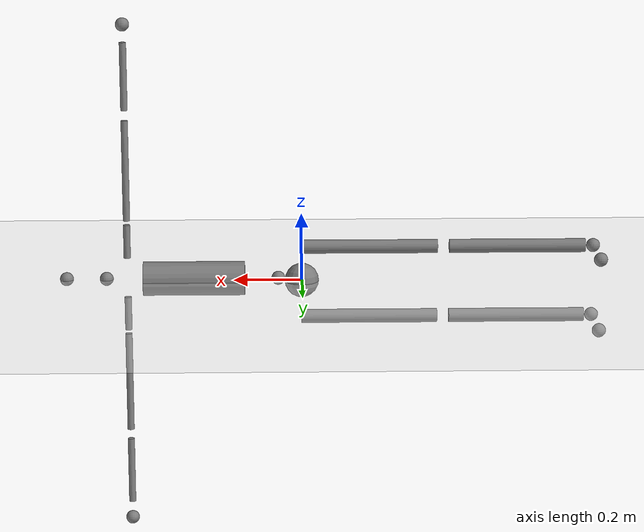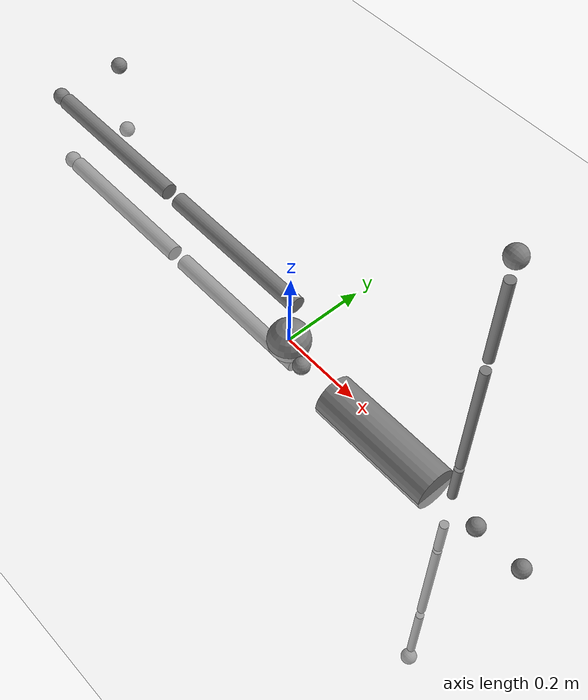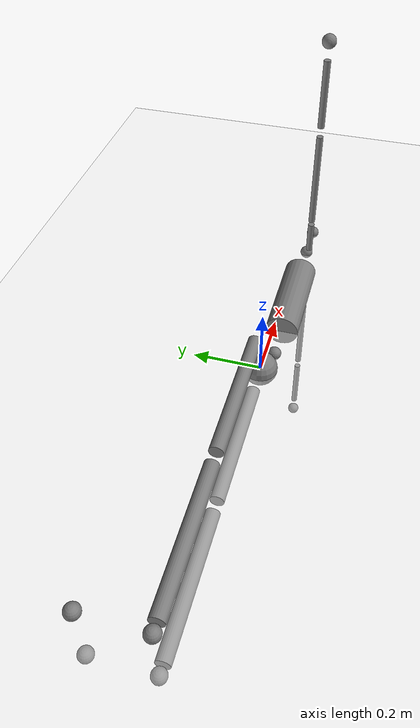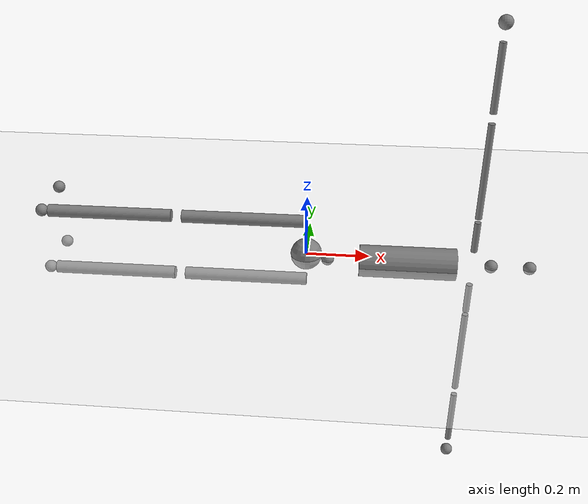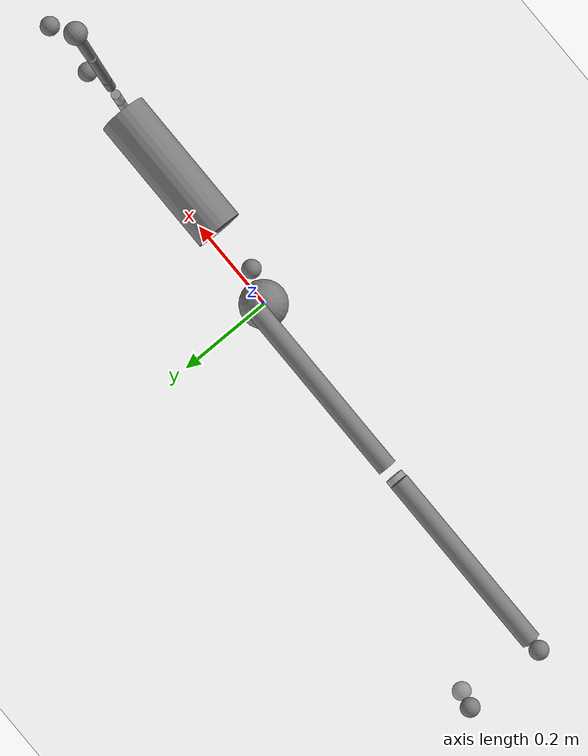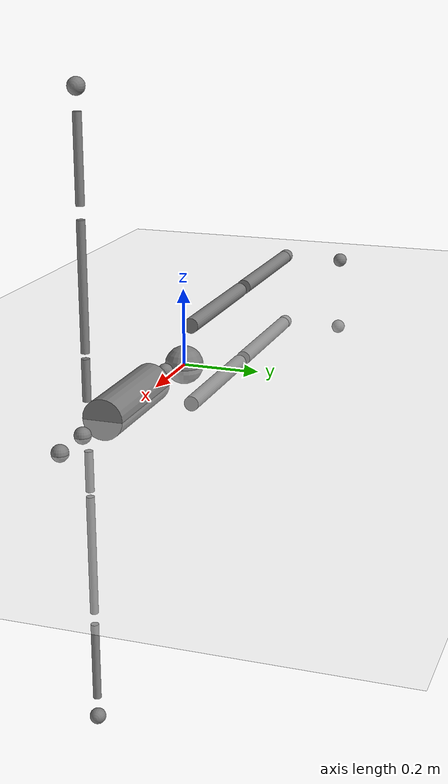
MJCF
<?xml version='1.0' encoding='utf-8'?>
<mujoco model="bvh_human_3dof_tpose">
  <compiler angle="radian" meshdir="meshes/" />
  <worldbody>
    <body name="Hips">
      <inertial pos="0 0 0" mass="1" diaginertia="0.01 0.01 0.01" />
      <joint name="floating_base_joint" type="free" />
      <geom size="0.05" contype="0" conaffinity="0" group="1" density="0" />
      <body name="LeftUpLeg_rz" pos="0.00103457 0.0185782 0.105485" quat="-2.32051e-08 0 0 -1">
        <inertial pos="0 0 0" mass="1" diaginertia="0.01 0.01 0.01" />
        <joint name="Hips_to_LeftUpLeg_rz" pos="0 0 0" axis="0 0 1" range="-15 15" actuatorfrcrange="-100 100" />
        <body name="LeftUpLeg_ry">
          <inertial pos="0 0 0" mass="1" diaginertia="0.01 0.01 0.01" />
          <joint name="LeftUpLeg_rz_to_LeftUpLeg_ry" pos="0 0 0" axis="0 1 0" range="-15 15" actuatorfrcrange="-100 100" />
          <body name="LeftUpLeg" quat="-2.32051e-08 1 0 0">
            <inertial pos="0 0 0" mass="1" diaginertia="0.01 0.01 0.01" />
            <joint name="LeftUpLeg_ry_to_LeftUpLeg" pos="0 0 0" axis="1 0 0" range="-15 15" actuatorfrcrange="-100 100" />
            <geom size="0.02 0.2" pos="0.2 0 0" quat="0.707388 0 0.706825 0" type="cylinder" contype="0" conaffinity="0" group="1" density="0" />
            <body name="LeftLeg_rz" pos="0.435 -1.9e-07 2e-08">
              <inertial pos="0 0 0" mass="1" diaginertia="0.01 0.01 0.01" />
              <joint name="LeftUpLeg_to_LeftLeg_rz" pos="0 0 0" axis="0 0 1" range="-15 15" actuatorfrcrange="-100 100" />
              <body name="LeftLeg_ry">
                <inertial pos="0 0 0" mass="1" diaginertia="0.01 0.01 0.01" />
                <joint name="LeftLeg_rz_to_LeftLeg_ry" pos="0 0 0" axis="0 1 0" range="-15 15" actuatorfrcrange="-100 100" />
                <body name="LeftLeg">
                  <inertial pos="0 0 0" mass="1" diaginertia="0.01 0.01 0.01" />
                  <joint name="LeftLeg_ry_to_LeftLeg" pos="0 0 0" axis="1 0 0" range="-15 15" actuatorfrcrange="-100 100" />
                  <geom size="0.02 0.2" pos="0.2 0 0" quat="0.707388 0 0.706825 0" type="cylinder" contype="0" conaffinity="0" group="1" density="0" />
                  <body name="LeftFoot_rz" pos="0.423722 -4e-08 3e-08" quat="0.707107 0 0 0.707107">
                    <inertial pos="0 0 0" mass="1" diaginertia="0.01 0.01 0.01" />
                    <joint name="LeftLeg_to_LeftFoot_rz" pos="0 0 0" axis="0 0 1" range="-15 15" actuatorfrcrange="-100 100" />
                    <body name="LeftFoot_ry">
                      <inertial pos="0 0 0" mass="1" diaginertia="0.01 0.01 0.01" />
                      <joint name="LeftFoot_rz_to_LeftFoot_ry" pos="0 0 0" axis="0 1 0" range="-15 15" actuatorfrcrange="-100 100" />
                      <body name="LeftFoot">
                        <inertial pos="0 0 0" mass="1" diaginertia="0.01 0.01 0.01" />
                        <joint name="LeftFoot_ry_to_LeftFoot" pos="0 0 0" axis="1 0 0" range="-15 15" actuatorfrcrange="-100 100" />
                        <geom size="0.02" contype="0" conaffinity="0" group="1" density="0" />
                        <body name="LeftToe_rz" pos="0.173 2e-08 6e-08">
                          <inertial pos="0 0 0" mass="1" diaginertia="0.01 0.01 0.01" />
                          <joint name="LeftFoot_to_LeftToe_rz" pos="0 0 0" axis="0 0 1" range="-15 15" actuatorfrcrange="-100 100" />
                          <body name="LeftToe_ry">
                            <inertial pos="0 0 0" mass="1" diaginertia="0.01 0.01 0.01" />
                            <joint name="LeftToe_rz_to_LeftToe_ry" pos="0 0 0" axis="0 1 0" range="-15 15" actuatorfrcrange="-100 100" />
                            <body name="LeftToe">
                              <inertial pos="0 0 0" mass="2" diaginertia="0.02 0.02 0.02" />
                              <joint name="LeftToe_ry_to_LeftToe" pos="0 0 0" axis="1 0 0" range="-15 15" actuatorfrcrange="-100 100" />
                              <geom size="0.02" contype="0" conaffinity="0" group="1" density="0" />
                              <geom size="0.02" contype="0" conaffinity="0" group="1" density="0" />
                            </body>
                          </body>
                        </body>
                      </body>
                    </body>
                  </body>
                </body>
              </body>
            </body>
          </body>
        </body>
      </body>
      <body name="RightUpLeg_rz" pos="0.00103459 0.0185782 -0.105485" quat="-2.32051e-08 0 0 -1">
        <inertial pos="0 0 0" mass="1" diaginertia="0.01 0.01 0.01" />
        <joint name="Hips_to_RightUpLeg_rz" pos="0 0 0" axis="0 0 1" range="-15 15" actuatorfrcrange="-100 100" />
        <body name="RightUpLeg_ry">
          <inertial pos="0 0 0" mass="1" diaginertia="0.01 0.01 0.01" />
          <joint name="RightUpLeg_rz_to_RightUpLeg_ry" pos="0 0 0" axis="0 1 0" range="-15 15" actuatorfrcrange="-100 100" />
          <body name="RightUpLeg" quat="-2.32051e-08 -1 0 0">
            <inertial pos="0 0 0" mass="1" diaginertia="0.01 0.01 0.01" />
            <joint name="RightUpLeg_ry_to_RightUpLeg" pos="0 0 0" axis="1 0 0" range="-15 15" actuatorfrcrange="-100 100" />
            <geom size="0.02 0.2" pos="0.2 0 0" quat="0.707388 0 0.706825 0" type="cylinder" contype="0" conaffinity="0" group="1" density="0" />
            <body name="RightLeg_rz" pos="0.435 -1.5e-07 1e-07">
              <inertial pos="0 0 0" mass="1" diaginertia="0.01 0.01 0.01" />
              <joint name="RightUpLeg_to_RightLeg_rz" pos="0 0 0" axis="0 0 1" range="-15 15" actuatorfrcrange="-100 100" />
              <body name="RightLeg_ry">
                <inertial pos="0 0 0" mass="1" diaginertia="0.01 0.01 0.01" />
                <joint name="RightLeg_rz_to_RightLeg_ry" pos="0 0 0" axis="0 1 0" range="-15 15" actuatorfrcrange="-100 100" />
                <body name="RightLeg">
                  <inertial pos="0 0 0" mass="1" diaginertia="0.01 0.01 0.01" />
                  <joint name="RightLeg_ry_to_RightLeg" pos="0 0 0" axis="1 0 0" range="-15 15" actuatorfrcrange="-100 100" />
                  <geom size="0.02 0.2" pos="0.2 0 0" quat="0.707388 0 0.706825 0" type="cylinder" contype="0" conaffinity="0" group="1" density="0" />
                  <body name="RightFoot_rz" pos="0.423723 -8e-08 1e-07" quat="0.707107 0 0 0.707107">
                    <inertial pos="0 0 0" mass="1" diaginertia="0.01 0.01 0.01" />
                    <joint name="RightLeg_to_RightFoot_rz" pos="0 0 0" axis="0 0 1" range="-15 15" actuatorfrcrange="-100 100" />
                    <body name="RightFoot_ry">
                      <inertial pos="0 0 0" mass="1" diaginertia="0.01 0.01 0.01" />
                      <joint name="RightFoot_rz_to_RightFoot_ry" pos="0 0 0" axis="0 1 0" range="-15 15" actuatorfrcrange="-100 100" />
                      <body name="RightFoot">
                        <inertial pos="0 0 0" mass="1" diaginertia="0.01 0.01 0.01" />
                        <joint name="RightFoot_ry_to_RightFoot" pos="0 0 0" axis="1 0 0" range="-15 15" actuatorfrcrange="-100 100" />
                        <geom size="0.02" contype="0" conaffinity="0" group="1" density="0" />
                        <body name="RightToe_rz" pos="0.173 -5e-08 0">
                          <inertial pos="0 0 0" mass="1" diaginertia="0.01 0.01 0.01" />
                          <joint name="RightFoot_to_RightToe_rz" pos="0 0 0" axis="0 0 1" range="-15 15" actuatorfrcrange="-100 100" />
                          <body name="RightToe_ry">
                            <inertial pos="0 0 0" mass="1" diaginertia="0.01 0.01 0.01" />
                            <joint name="RightToe_rz_to_RightToe_ry" pos="0 0 0" axis="0 1 0" range="-15 15" actuatorfrcrange="-100 100" />
                            <body name="RightToe">
                              <inertial pos="0 0 0" mass="2" diaginertia="0.02 0.02 0.02" />
                              <joint name="RightToe_ry_to_RightToe" pos="0 0 0" axis="1 0 0" range="-15 15" actuatorfrcrange="-100 100" />
                              <geom size="0.02" contype="0" conaffinity="0" group="1" density="0" />
                              <geom size="0.02" contype="0" conaffinity="0" group="1" density="0" />
                            </body>
                          </body>
                        </body>
                      </body>
                    </body>
                  </body>
                </body>
              </body>
            </body>
          </body>
        </body>
      </body>
      <body name="Spine_rz" pos="0.0690197 -0.0260374 1e-08">
        <inertial pos="0 0 0" mass="1" diaginertia="0.01 0.01 0.01" />
        <joint name="Hips_to_Spine_rz" pos="0 0 0" axis="0 0 1" range="-15 15" actuatorfrcrange="-100 100" />
        <body name="Spine_ry">
          <inertial pos="0 0 0" mass="1" diaginertia="0.01 0.01 0.01" />
          <joint name="Spine_rz_to_Spine_ry" pos="0 0 0" axis="0 1 0" range="-15 15" actuatorfrcrange="-100 100" />
          <body name="Spine">
            <inertial pos="0 0 0" mass="1" diaginertia="0.01 0.01 0.01" />
            <joint name="Spine_ry_to_Spine" pos="0 0 0" axis="1 0 0" range="-15 15" actuatorfrcrange="-100 100" />
            <geom size="0.02" contype="0" conaffinity="0" group="1" density="0" />
            <body name="Spine1_rz" pos="0.125881 1.6e-07 -5e-08">
              <inertial pos="0 0 0" mass="1" diaginertia="0.01 0.01 0.01" />
              <joint name="Spine_to_Spine1_rz" pos="0 0 0" axis="0 0 1" range="-15 15" actuatorfrcrange="-100 100" />
              <body name="Spine1_ry">
                <inertial pos="0 0 0" mass="1" diaginertia="0.01 0.01 0.01" />
                <joint name="Spine1_rz_to_Spine1_ry" pos="0 0 0" axis="0 1 0" range="-15 15" actuatorfrcrange="-100 100" />
                <body name="Spine1">
                  <inertial pos="0 0 0" mass="1" diaginertia="0.01 0.01 0.01" />
                  <joint name="Spine1_ry_to_Spine1" pos="0 0 0" axis="1 0 0" range="-15 15" actuatorfrcrange="-100 100" />
                  <geom size="0.02" contype="0" conaffinity="0" group="1" density="0" />
                  <body name="Spine2_rz" pos="0.123432 -1.1e-07 -5e-08">
                    <inertial pos="0 0 0" mass="1" diaginertia="0.01 0.01 0.01" />
                    <joint name="Spine1_to_Spine2_rz" pos="0 0 0" axis="0 0 1" range="-15 15" actuatorfrcrange="-100 100" />
                    <body name="Spine2_ry">
                      <inertial pos="0 0 0" mass="1" diaginertia="0.01 0.01 0.01" />
                      <joint name="Spine2_rz_to_Spine2_ry" pos="0 0 0" axis="0 1 0" range="-15 15" actuatorfrcrange="-100 100" />
                      <body name="Spine2">
                        <inertial pos="0 0 0" mass="1" diaginertia="0.01 0.01 0.01" />
                        <joint name="Spine2_ry_to_Spine2" pos="0 0 0" axis="1 0 0" range="-15 15" actuatorfrcrange="-100 100" />
                        <geom size="0.05 0.15" quat="0.707388 0 0.706825 0" type="cylinder" contype="0" conaffinity="0" group="1" density="0" />
                        <body name="Neck_rz" pos="0.258329 8e-08 6e-08">
                          <inertial pos="0 0 0" mass="1" diaginertia="0.01 0.01 0.01" />
                          <joint name="Spine2_to_Neck_rz" pos="0 0 0" axis="0 0 1" range="-15 15" actuatorfrcrange="-100 100" />
                          <body name="Neck_ry">
                            <inertial pos="0 0 0" mass="1" diaginertia="0.01 0.01 0.01" />
                            <joint name="Neck_rz_to_Neck_ry" pos="0 0 0" axis="0 1 0" range="-15 15" actuatorfrcrange="-100 100" />
                            <body name="Neck">
                              <inertial pos="0 0 0" mass="1" diaginertia="0.01 0.01 0.01" />
                              <joint name="Neck_ry_to_Neck" pos="0 0 0" axis="1 0 0" range="-15 15" actuatorfrcrange="-100 100" />
                              <geom size="0.02" contype="0" conaffinity="0" group="1" density="0" />
                              <body name="Head_rz" pos="0.117666 -4e-08 -2e-08">
                                <inertial pos="0 0 0" mass="1" diaginertia="0.01 0.01 0.01" />
                                <joint name="Neck_to_Head_rz" pos="0 0 0" axis="0 0 1" range="-15 15" actuatorfrcrange="-100 100" />
                                <body name="Head_ry">
                                  <inertial pos="0 0 0" mass="1" diaginertia="0.01 0.01 0.01" />
                                  <joint name="Head_rz_to_Head_ry" pos="0 0 0" axis="0 1 0" range="-15 15" actuatorfrcrange="-100 100" />
                                  <body name="Head">
                                    <inertial pos="0 0 0" mass="2" diaginertia="0.02 0.02 0.02" />
                                    <joint name="Head_ry_to_Head" pos="0 0 0" axis="1 0 0" range="-15 15" actuatorfrcrange="-100 100" />
                                    <geom size="0.02" contype="0" conaffinity="0" group="1" density="0" />
                                    <geom size="0.02" contype="0" conaffinity="0" group="1" density="0" />
                                  </body>
                                </body>
                              </body>
                            </body>
                          </body>
                        </body>
                        <body name="LeftShoulder_rz" pos="0.197459 -0.0148037 0.0600012" quat="0.707107 0 0 -0.707107">
                          <inertial pos="0 0 0" mass="1" diaginertia="0.01 0.01 0.01" />
                          <joint name="Spine2_to_LeftShoulder_rz" pos="0 0 0" axis="0 0 1" range="-15 15" actuatorfrcrange="-100 100" />
                          <body name="LeftShoulder_ry" quat="0.707107 0 -0.707107 0">
                            <inertial pos="0 0 0" mass="1" diaginertia="0.01 0.01 0.01" />
                            <joint name="LeftShoulder_rz_to_LeftShoulder_ry" pos="0 0 0" axis="0 1 0" range="-15 15" actuatorfrcrange="-100 100" />
                            <body name="LeftShoulder" quat="0.707107 -0.707107 0 0">
                              <inertial pos="0 0 0" mass="1" diaginertia="0.01 0.01 0.01" />
                              <joint name="LeftShoulder_ry_to_LeftShoulder" pos="0 0 0" axis="1 0 0" range="-15 15" actuatorfrcrange="-100 100" />
                              <geom size="0.01 0.05" pos="0.05 0 0" quat="0.707388 0 0.706825 0" type="cylinder" contype="0" conaffinity="0" group="1" density="0" />
                              <body name="LeftArm_rz" pos="0.112841 -1.2e-07 -8e-08">
                                <inertial pos="0 0 0" mass="1" diaginertia="0.01 0.01 0.01" />
                                <joint name="LeftShoulder_to_LeftArm_rz" pos="0 0 0" axis="0 0 1" range="-15 15" actuatorfrcrange="-100 100" />
                                <body name="LeftArm_ry">
                                  <inertial pos="0 0 0" mass="1" diaginertia="0.01 0.01 0.01" />
                                  <joint name="LeftArm_rz_to_LeftArm_ry" pos="0 0 0" axis="0 1 0" range="-15 15" actuatorfrcrange="-100 100" />
                                  <body name="LeftArm">
                                    <inertial pos="0 0 0" mass="1" diaginertia="0.01 0.01 0.01" />
                                    <joint name="LeftArm_ry_to_LeftArm" pos="0 0 0" axis="1 0 0" range="-15 15" actuatorfrcrange="-100 100" />
                                    <geom size="0.01 0.15" pos="0.15 0 0" quat="0.707388 0 0.706825 0" type="cylinder" contype="0" conaffinity="0" group="1" density="0" />
                                    <body name="LeftForeArm_rz" pos="0.33 2e-08 2.2e-07">
                                      <inertial pos="0 0 0" mass="1" diaginertia="0.01 0.01 0.01" />
                                      <joint name="LeftArm_to_LeftForeArm_rz" pos="0 0 0" axis="0 0 1" range="-15 15" actuatorfrcrange="-100 100" />
                                      <body name="LeftForeArm_ry">
                                        <inertial pos="0 0 0" mass="1" diaginertia="0.01 0.01 0.01" />
                                        <joint name="LeftForeArm_rz_to_LeftForeArm_ry" pos="0 0 0" axis="0 1 0" range="-15 15" actuatorfrcrange="-100 100" />
                                        <body name="LeftForeArm">
                                          <inertial pos="0 0 0" mass="1" diaginertia="0.01 0.01 0.01" />
                                          <joint name="LeftForeArm_ry_to_LeftForeArm" pos="0 0 0" axis="1 0 0" range="-15 15" actuatorfrcrange="-100 100" />
                                          <geom size="0.01 0.1" pos="0.1 0 0" quat="0.707388 0 0.706825 0" type="cylinder" contype="0" conaffinity="0" group="1" density="0" />
                                          <body name="LeftHand_rz" pos="0.252 6e-08 1.5e-07">
                                            <inertial pos="0 0 0" mass="1" diaginertia="0.01 0.01 0.01" />
                                            <joint name="LeftForeArm_to_LeftHand_rz" pos="0 0 0" axis="0 0 1" range="-15 15" actuatorfrcrange="-100 100" />
                                            <body name="LeftHand_ry">
                                              <inertial pos="0 0 0" mass="1" diaginertia="0.01 0.01 0.01" />
                                              <joint name="LeftHand_rz_to_LeftHand_ry" pos="0 0 0" axis="0 1 0" range="-15 15" actuatorfrcrange="-100 100" />
                                              <body name="LeftHand">
                                                <inertial pos="0 0 0" mass="2" diaginertia="0.02 0.02 0.02" />
                                                <joint name="LeftHand_ry_to_LeftHand" pos="0 0 0" axis="1 0 0" range="-15 15" actuatorfrcrange="-100 100" />
                                                <geom size="0.02" contype="0" conaffinity="0" group="1" density="0" />
                                                <geom size="0.02" contype="0" conaffinity="0" group="1" density="0" />
                                              </body>
                                            </body>
                                          </body>
                                        </body>
                                      </body>
                                    </body>
                                  </body>
                                </body>
                              </body>
                            </body>
                          </body>
                        </body>
                        <body name="RightShoulder_rz" pos="0.197461 -0.0148038 -0.0600007" quat="0.707107 0 0 0.707107">
                          <inertial pos="0 0 0" mass="1" diaginertia="0.01 0.01 0.01" />
                          <joint name="Spine2_to_RightShoulder_rz" pos="0 0 0" axis="0 0 1" range="-15 15" actuatorfrcrange="-100 100" />
                          <body name="RightShoulder_ry" quat="0.707107 0 0.707107 0">
                            <inertial pos="0 0 0" mass="1" diaginertia="0.01 0.01 0.01" />
                            <joint name="RightShoulder_rz_to_RightShoulder_ry" pos="0 0 0" axis="0 1 0" range="-15 15" actuatorfrcrange="-100 100" />
                            <body name="RightShoulder" quat="0.707107 -0.707107 0 0">
                              <inertial pos="0 0 0" mass="1" diaginertia="0.01 0.01 0.01" />
                              <joint name="RightShoulder_ry_to_RightShoulder" pos="0 0 0" axis="1 0 0" range="-15 15" actuatorfrcrange="-100 100" />
                              <geom size="0.01 0.05" pos="0.05 0 0" quat="0.707388 0 0.706825 0" type="cylinder" contype="0" conaffinity="0" group="1" density="0" />
                              <body name="RightArm_rz" pos="0.112841 -3.5e-07 -8e-08">
                                <inertial pos="0 0 0" mass="1" diaginertia="0.01 0.01 0.01" />
                                <joint name="RightShoulder_to_RightArm_rz" pos="0 0 0" axis="0 0 1" range="-15 15" actuatorfrcrange="-100 100" />
                                <body name="RightArm_ry">
                                  <inertial pos="0 0 0" mass="1" diaginertia="0.01 0.01 0.01" />
                                  <joint name="RightArm_rz_to_RightArm_ry" pos="0 0 0" axis="0 1 0" range="-15 15" actuatorfrcrange="-100 100" />
                                  <body name="RightArm">
                                    <inertial pos="0 0 0" mass="1" diaginertia="0.01 0.01 0.01" />
                                    <joint name="RightArm_ry_to_RightArm" pos="0 0 0" axis="1 0 0" range="-15 15" actuatorfrcrange="-100 100" />
                                    <geom size="0.01 0.15" pos="0.15 0 0" quat="0.707388 0 0.706825 0" type="cylinder" contype="0" conaffinity="0" group="1" density="0" />
                                    <body name="RightForeArm_rz" pos="0.330001 1.9e-07 6e-08">
                                      <inertial pos="0 0 0" mass="1" diaginertia="0.01 0.01 0.01" />
                                      <joint name="RightArm_to_RightForeArm_rz" pos="0 0 0" axis="0 0 1" range="-15 15" actuatorfrcrange="-100 100" />
                                      <body name="RightForeArm_ry">
                                        <inertial pos="0 0 0" mass="1" diaginertia="0.01 0.01 0.01" />
                                        <joint name="RightForeArm_rz_to_RightForeArm_ry" pos="0 0 0" axis="0 1 0" range="-15 15" actuatorfrcrange="-100 100" />
                                        <body name="RightForeArm">
                                          <inertial pos="0 0 0" mass="1" diaginertia="0.01 0.01 0.01" />
                                          <joint name="RightForeArm_ry_to_RightForeArm" pos="0 0 0" axis="1 0 0" range="-15 15" actuatorfrcrange="-100 100" />
                                          <geom size="0.01 0.1" pos="0.1 0 0" quat="0.707388 0 0.706825 0" type="cylinder" contype="0" conaffinity="0" group="1" density="0" />
                                          <body name="RightHand_rz" pos="0.251998 1.39e-06 4.31e-06">
                                            <inertial pos="0 0 0" mass="1" diaginertia="0.01 0.01 0.01" />
                                            <joint name="RightForeArm_to_RightHand_rz" pos="0 0 0" axis="0 0 1" range="-15 15" actuatorfrcrange="-100 100" />
                                            <body name="RightHand_ry">
                                              <inertial pos="0 0 0" mass="1" diaginertia="0.01 0.01 0.01" />
                                              <joint name="RightHand_rz_to_RightHand_ry" pos="0 0 0" axis="0 1 0" range="-15 15" actuatorfrcrange="-100 100" />
                                              <body name="RightHand">
                                                <inertial pos="0 0 0" mass="2" diaginertia="0.02 0.02 0.02" />
                                                <joint name="RightHand_ry_to_RightHand" pos="0 0 0" axis="1 0 0" range="-15 15" actuatorfrcrange="-100 100" />
                                                <geom size="0.02" contype="0" conaffinity="0" group="1" density="0" />
                                                <geom size="0.02" contype="0" conaffinity="0" group="1" density="0" />
                                              </body>
                                            </body>
                                          </body>
                                        </body>
                                      </body>
                                    </body>
                                  </body>
                                </body>
                              </body>
                            </body>
                          </body>
                        </body>
                      </body>
                    </body>
                  </body>
                </body>
              </body>
            </body>
          </body>
        </body>
      </body>
    </body>
  </worldbody>
  <actuator>
    <motor name="Hips_to_LeftUpLeg_rz" joint="Hips_to_LeftUpLeg_rz" gear="1" ctrlrange="-1 1" />
    <motor name="LeftUpLeg_rz_to_LeftUpLeg_ry" joint="LeftUpLeg_rz_to_LeftUpLeg_ry" gear="1" ctrlrange="-1 1" />
    <motor name="LeftUpLeg_ry_to_LeftUpLeg" joint="LeftUpLeg_ry_to_LeftUpLeg" gear="1" ctrlrange="-1 1" />
    <motor name="LeftUpLeg_to_LeftLeg_rz" joint="LeftUpLeg_to_LeftLeg_rz" gear="1" ctrlrange="-1 1" />
    <motor name="LeftLeg_rz_to_LeftLeg_ry" joint="LeftLeg_rz_to_LeftLeg_ry" gear="1" ctrlrange="-1 1" />
    <motor name="LeftLeg_ry_to_LeftLeg" joint="LeftLeg_ry_to_LeftLeg" gear="1" ctrlrange="-1 1" />
    <motor name="LeftLeg_to_LeftFoot_rz" joint="LeftLeg_to_LeftFoot_rz" gear="1" ctrlrange="-1 1" />
    <motor name="LeftFoot_rz_to_LeftFoot_ry" joint="LeftFoot_rz_to_LeftFoot_ry" gear="1" ctrlrange="-1 1" />
    <motor name="LeftFoot_ry_to_LeftFoot" joint="LeftFoot_ry_to_LeftFoot" gear="1" ctrlrange="-1 1" />
    <motor name="LeftFoot_to_LeftToe_rz" joint="LeftFoot_to_LeftToe_rz" gear="1" ctrlrange="-1 1" />
    <motor name="LeftToe_rz_to_LeftToe_ry" joint="LeftToe_rz_to_LeftToe_ry" gear="1" ctrlrange="-1 1" />
    <motor name="LeftToe_ry_to_LeftToe" joint="LeftToe_ry_to_LeftToe" gear="1" ctrlrange="-1 1" />
    <motor name="Hips_to_RightUpLeg_rz" joint="Hips_to_RightUpLeg_rz" gear="1" ctrlrange="-1 1" />
    <motor name="RightUpLeg_rz_to_RightUpLeg_ry" joint="RightUpLeg_rz_to_RightUpLeg_ry" gear="1" ctrlrange="-1 1" />
    <motor name="RightUpLeg_ry_to_RightUpLeg" joint="RightUpLeg_ry_to_RightUpLeg" gear="1" ctrlrange="-1 1" />
    <motor name="RightUpLeg_to_RightLeg_rz" joint="RightUpLeg_to_RightLeg_rz" gear="1" ctrlrange="-1 1" />
    <motor name="RightLeg_rz_to_RightLeg_ry" joint="RightLeg_rz_to_RightLeg_ry" gear="1" ctrlrange="-1 1" />
    <motor name="RightLeg_ry_to_RightLeg" joint="RightLeg_ry_to_RightLeg" gear="1" ctrlrange="-1 1" />
    <motor name="RightLeg_to_RightFoot_rz" joint="RightLeg_to_RightFoot_rz" gear="1" ctrlrange="-1 1" />
    <motor name="RightFoot_rz_to_RightFoot_ry" joint="RightFoot_rz_to_RightFoot_ry" gear="1" ctrlrange="-1 1" />
    <motor name="RightFoot_ry_to_RightFoot" joint="RightFoot_ry_to_RightFoot" gear="1" ctrlrange="-1 1" />
    <motor name="RightFoot_to_RightToe_rz" joint="RightFoot_to_RightToe_rz" gear="1" ctrlrange="-1 1" />
    <motor name="RightToe_rz_to_RightToe_ry" joint="RightToe_rz_to_RightToe_ry" gear="1" ctrlrange="-1 1" />
    <motor name="RightToe_ry_to_RightToe" joint="RightToe_ry_to_RightToe" gear="1" ctrlrange="-1 1" />
    <motor name="Hips_to_Spine_rz" joint="Hips_to_Spine_rz" gear="1" ctrlrange="-1 1" />
    <motor name="Spine_rz_to_Spine_ry" joint="Spine_rz_to_Spine_ry" gear="1" ctrlrange="-1 1" />
    <motor name="Spine_ry_to_Spine" joint="Spine_ry_to_Spine" gear="1" ctrlrange="-1 1" />
    <motor name="Spine_to_Spine1_rz" joint="Spine_to_Spine1_rz" gear="1" ctrlrange="-1 1" />
    <motor name="Spine1_rz_to_Spine1_ry" joint="Spine1_rz_to_Spine1_ry" gear="1" ctrlrange="-1 1" />
    <motor name="Spine1_ry_to_Spine1" joint="Spine1_ry_to_Spine1" gear="1" ctrlrange="-1 1" />
    <motor name="Spine1_to_Spine2_rz" joint="Spine1_to_Spine2_rz" gear="1" ctrlrange="-1 1" />
    <motor name="Spine2_rz_to_Spine2_ry" joint="Spine2_rz_to_Spine2_ry" gear="1" ctrlrange="-1 1" />
    <motor name="Spine2_ry_to_Spine2" joint="Spine2_ry_to_Spine2" gear="1" ctrlrange="-1 1" />
    <motor name="Spine2_to_Neck_rz" joint="Spine2_to_Neck_rz" gear="1" ctrlrange="-1 1" />
    <motor name="Neck_rz_to_Neck_ry" joint="Neck_rz_to_Neck_ry" gear="1" ctrlrange="-1 1" />
    <motor name="Neck_ry_to_Neck" joint="Neck_ry_to_Neck" gear="1" ctrlrange="-1 1" />
    <motor name="Neck_to_Head_rz" joint="Neck_to_Head_rz" gear="1" ctrlrange="-1 1" />
    <motor name="Head_rz_to_Head_ry" joint="Head_rz_to_Head_ry" gear="1" ctrlrange="-1 1" />
    <motor name="Head_ry_to_Head" joint="Head_ry_to_Head" gear="1" ctrlrange="-1 1" />
    <motor name="Spine2_to_LeftShoulder_rz" joint="Spine2_to_LeftShoulder_rz" gear="1" ctrlrange="-1 1" />
    <motor name="LeftShoulder_rz_to_LeftShoulder_ry" joint="LeftShoulder_rz_to_LeftShoulder_ry" gear="1" ctrlrange="-1 1" />
    <motor name="LeftShoulder_ry_to_LeftShoulder" joint="LeftShoulder_ry_to_LeftShoulder" gear="1" ctrlrange="-1 1" />
    <motor name="LeftShoulder_to_LeftArm_rz" joint="LeftShoulder_to_LeftArm_rz" gear="1" ctrlrange="-1 1" />
    <motor name="LeftArm_rz_to_LeftArm_ry" joint="LeftArm_rz_to_LeftArm_ry" gear="1" ctrlrange="-1 1" />
    <motor name="LeftArm_ry_to_LeftArm" joint="LeftArm_ry_to_LeftArm" gear="1" ctrlrange="-1 1" />
    <motor name="LeftArm_to_LeftForeArm_rz" joint="LeftArm_to_LeftForeArm_rz" gear="1" ctrlrange="-1 1" />
    <motor name="LeftForeArm_rz_to_LeftForeArm_ry" joint="LeftForeArm_rz_to_LeftForeArm_ry" gear="1" ctrlrange="-1 1" />
    <motor name="LeftForeArm_ry_to_LeftForeArm" joint="LeftForeArm_ry_to_LeftForeArm" gear="1" ctrlrange="-1 1" />
    <motor name="LeftForeArm_to_LeftHand_rz" joint="LeftForeArm_to_LeftHand_rz" gear="1" ctrlrange="-1 1" />
    <motor name="LeftHand_rz_to_LeftHand_ry" joint="LeftHand_rz_to_LeftHand_ry" gear="1" ctrlrange="-1 1" />
    <motor name="LeftHand_ry_to_LeftHand" joint="LeftHand_ry_to_LeftHand" gear="1" ctrlrange="-1 1" />
    <motor name="Spine2_to_RightShoulder_rz" joint="Spine2_to_RightShoulder_rz" gear="1" ctrlrange="-1 1" />
    <motor name="RightShoulder_rz_to_RightShoulder_ry" joint="RightShoulder_rz_to_RightShoulder_ry" gear="1" ctrlrange="-1 1" />
    <motor name="RightShoulder_ry_to_RightShoulder" joint="RightShoulder_ry_to_RightShoulder" gear="1" ctrlrange="-1 1" />
    <motor name="RightShoulder_to_RightArm_rz" joint="RightShoulder_to_RightArm_rz" gear="1" ctrlrange="-1 1" />
    <motor name="RightArm_rz_to_RightArm_ry" joint="RightArm_rz_to_RightArm_ry" gear="1" ctrlrange="-1 1" />
    <motor name="RightArm_ry_to_RightArm" joint="RightArm_ry_to_RightArm" gear="1" ctrlrange="-1 1" />
    <motor name="RightArm_to_RightForeArm_rz" joint="RightArm_to_RightForeArm_rz" gear="1" ctrlrange="-1 1" />
    <motor name="RightForeArm_rz_to_RightForeArm_ry" joint="RightForeArm_rz_to_RightForeArm_ry" gear="1" ctrlrange="-1 1" />
    <motor name="RightForeArm_ry_to_RightForeArm" joint="RightForeArm_ry_to_RightForeArm" gear="1" ctrlrange="-1 1" />
    <motor name="RightForeArm_to_RightHand_rz" joint="RightForeArm_to_RightHand_rz" gear="1" ctrlrange="-1 1" />
    <motor name="RightHand_rz_to_RightHand_ry" joint="RightHand_rz_to_RightHand_ry" gear="1" ctrlrange="-1 1" />
    <motor name="RightHand_ry_to_RightHand" joint="RightHand_ry_to_RightHand" gear="1" ctrlrange="-1 1" />
  </actuator>

    <!-- setup scene -->
  <statistic center="1.0 0.7 1.0" extent="0.8"/>
  <visual>
    <headlight diffuse="0.6 0.6 0.6" ambient="0.1 0.1 0.1" specular="0.9 0.9 0.9"/>
    <rgba haze="0.15 0.25 0.35 1"/>
    <global azimuth="-140" elevation="-20" offwidth="2080" offheight="1170"/>
  </visual>
  <asset>
     <texture type="skybox" builtin="gradient" rgb1="1 1 1" rgb2="1 1 1" width="800" height="800"/>
    <texture type="2d" name="groundplane" builtin="checker" mark="edge" rgb1="1 1 1" rgb2="1 1 1" markrgb="0 0 0"
      width="300" height="300"/>
    <material name="groundplane" texture="groundplane" texuniform="true" texrepeat="5 5" reflectance="0"/>
    <texture type="skybox" builtin="gradient" rgb1=".4 .5 .6" rgb2="0 0 0" width="100" height="100"/>
    <texture builtin="flat" height="1278" mark="cross" markrgb="1 1 1" name="texgeom" random="0.01" rgb1="0.8 0.6 0.4" rgb2="0.8 0.6 0.4" type="cube" width="127"/>
    <texture name="texplane" builtin="checker" height="512" width="512" rgb1=".2 .3 .4" rgb2=".1 .15 .2" type="2d" />
    <material name="MatPlane" reflectance="0.5" shininess="0.01" specular="0.1" texrepeat="1 1" texture="texplane" texuniform="true" />
    <material name="geom" texture="texgeom" texuniform="true"/>
  </asset>
   <worldbody>
    <geom name="floor" size="0 0 0.01" type="plane" material="groundplane" contype="1" conaffinity="0" priority="1"
      friction="0.6" condim="3"/>

        <light diffuse=".5 .5 .5" pos="-3 -3 5" dir="3 3 -5" castshadow="true"/>

  </worldbody>
</mujoco>
